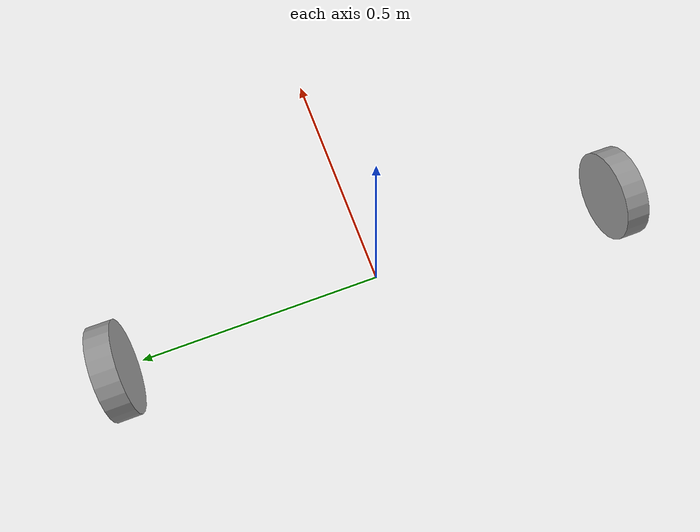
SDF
<?xml version='1.0'?>
<sdf version='1.6'>
  <model name='newrobot'>
    <link name='link_0'>
      <pose frame=''>2.3e-05 -0.555479 -0 4.8e-05 1.5707 1.57075</pose>
      <inertial>
        <mass>1</mass>
        <inertia>
          <ixx>0.1</ixx>
          <ixy>0</ixy>
          <ixz>0</ixz>
          <iyy>0.1</iyy>
          <iyz>0</iyz>
          <izz>0.1</izz>
        </inertia>
        <pose frame=''>0 0 0 0 -0 0</pose>
      </inertial>
      <gravity>1</gravity>
      <self_collide>0</self_collide>
      <kinematic>0</kinematic>
      <visual name='visual'>
        <pose frame=''>0 0 0 0 -0 0</pose>
        <geometry>
          <cylinder>
            <radius>0.1</radius>
            <length>0.05</length>
          </cylinder>
        </geometry>
        <material>
          <lighting>1</lighting>
          <script>
            <uri>file://media/materials/scripts/gazebo.material</uri>
            <name>Gazebo/Grey</name>
          </script>
          <ambient>0.3 0.3 0.3 1</ambient>
          <diffuse>0.7 0.7 0.7 1</diffuse>
          <specular>0.01 0.01 0.01 1</specular>
          <emissive>0 0 0 1</emissive>
          <shader type='vertex'>
            <normal_map>__default__</normal_map>
          </shader>
        </material>
        <cast_shadows>1</cast_shadows>
        <transparency>0</transparency>
      </visual>
      <collision name='collision'>
        <laser_retro>0</laser_retro>
        <max_contacts>10</max_contacts>
        <pose frame=''>0 0 0 0 -0 0</pose>
        <geometry>
          <cylinder>
            <radius>0.1</radius>
            <length>0.05</length>
          </cylinder>
        </geometry>
        <surface>
          <friction>
            <ode>
              <mu>1</mu>
              <mu2>1</mu2>
              <fdir1>0 0 0</fdir1>
              <slip1>0</slip1>
              <slip2>0</slip2>
            </ode>
            <torsional>
              <coefficient>1</coefficient>
              <patch_radius>0</patch_radius>
              <surface_radius>0</surface_radius>
              <use_patch_radius>1</use_patch_radius>
              <ode>
                <slip>0</slip>
              </ode>
            </torsional>
          </friction>
          <bounce>
            <restitution_coefficient>0</restitution_coefficient>
            <threshold>1e+06</threshold>
          </bounce>
          <contact>
            <collide_without_contact>0</collide_without_contact>
            <collide_without_contact_bitmask>1</collide_without_contact_bitmask>
            <collide_bitmask>1</collide_bitmask>
            <ode>
              <soft_cfm>0</soft_cfm>
              <soft_erp>0.2</soft_erp>
              <kp>1e+13</kp>
              <kd>1</kd>
              <max_vel>0.01</max_vel>
              <min_depth>0</min_depth>
            </ode>
            <bullet>
              <split_impulse>1</split_impulse>
              <split_impulse_penetration_threshold>-0.01</split_impulse_penetration_threshold>
              <soft_cfm>0</soft_cfm>
              <soft_erp>0.2</soft_erp>
              <kp>1e+13</kp>
              <kd>1</kd>
            </bullet>
          </contact>
        </surface>
      </collision>
    </link>
    <link name='link_0_clone'>
      <pose frame=''>-2.3e-05 0.555479 0 -0.000572 1.5707 1.57013</pose>
      <inertial>
        <mass>1</mass>
        <inertia>
          <ixx>0.1</ixx>
          <ixy>0</ixy>
          <ixz>0</ixz>
          <iyy>0.1</iyy>
          <iyz>0</iyz>
          <izz>0.1</izz>
        </inertia>
        <pose frame=''>0 0 0 0 -0 0</pose>
      </inertial>
      <self_collide>0</self_collide>
      <kinematic>0</kinematic>
      <visual name='visual'>
        <pose frame=''>0 0 0 0 -0 0</pose>
        <geometry>
          <cylinder>
            <radius>0.1</radius>
            <length>0.05</length>
          </cylinder>
        </geometry>
        <material>
          <lighting>1</lighting>
          <script>
            <uri>file://media/materials/scripts/gazebo.material</uri>
            <name>Gazebo/Grey</name>
          </script>
          <ambient>0.3 0.3 0.3 1</ambient>
          <diffuse>0.7 0.7 0.7 1</diffuse>
          <specular>0.01 0.01 0.01 1</specular>
          <emissive>0 0 0 1</emissive>
          <shader type='vertex'>
            <normal_map>__default__</normal_map>
          </shader>
        </material>
        <cast_shadows>1</cast_shadows>
        <transparency>0</transparency>
      </visual>
      <collision name='collision'>
        <laser_retro>0</laser_retro>
        <max_contacts>10</max_contacts>
        <pose frame=''>0 0 0 0 -0 0</pose>
        <geometry>
          <cylinder>
            <radius>0.1</radius>
            <length>0.05</length>
          </cylinder>
        </geometry>
        <surface>
          <friction>
            <ode>
              <mu>1</mu>
              <mu2>1</mu2>
              <fdir1>0 0 0</fdir1>
              <slip1>0</slip1>
              <slip2>0</slip2>
            </ode>
            <torsional>
              <coefficient>1</coefficient>
              <patch_radius>0</patch_radius>
              <surface_radius>0</surface_radius>
              <use_patch_radius>1</use_patch_radius>
              <ode>
                <slip>0</slip>
              </ode>
            </torsional>
          </friction>
          <bounce>
            <restitution_coefficient>0</restitution_coefficient>
            <threshold>1e+06</threshold>
          </bounce>
          <contact>
            <collide_without_contact>0</collide_without_contact>
            <collide_without_contact_bitmask>1</collide_without_contact_bitmask>
            <collide_bitmask>1</collide_bitmask>
            <ode>
              <soft_cfm>0</soft_cfm>
              <soft_erp>0.2</soft_erp>
              <kp>1e+13</kp>
              <kd>1</kd>
              <max_vel>0.01</max_vel>
              <min_depth>0</min_depth>
            </ode>
            <bullet>
              <split_impulse>1</split_impulse>
              <split_impulse_penetration_threshold>-0.01</split_impulse_penetration_threshold>
              <soft_cfm>0</soft_cfm>
              <soft_erp>0.2</soft_erp>
              <kp>1e+13</kp>
              <kd>1</kd>
            </bullet>
          </contact>
        </surface>
      </collision>
    </link>
    <static>0</static>
    <allow_auto_disable>1</allow_auto_disable>
  </model>
</sdf>
